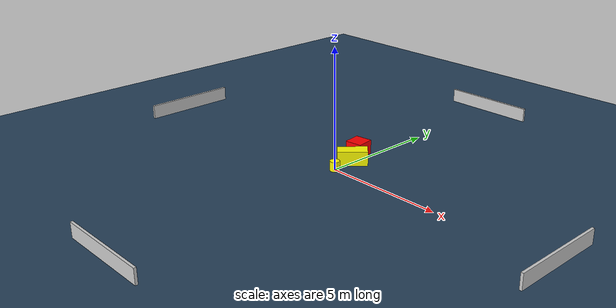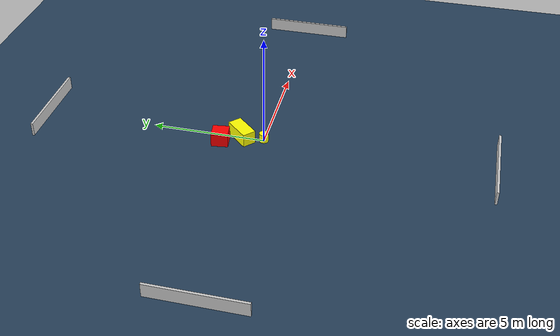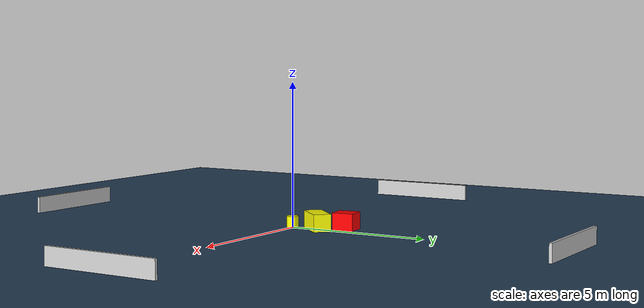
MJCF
<?xml version="1.0" ?>
<mujoco model="generated_environment">
  <option timestep="0.01" integrator="RK4" cone="elliptic"/>
  <default>
    <geom density="1"/>
  </default>
  <asset>
    <texture builtin="gradient" height="3072" name="skybox" rgb1="0.3 0.5 0.7" rgb2="0 0 0" type="skybox" width="512"/>
    <texture builtin="checker" height="300" name="groundplane" rgb1="0.2 0.3 0.4" rgb2="0.1 0.2 0.3" type="2d" width="300"/>
    <material name="groundplane" reflectance="0.2" texrepeat="5 5" texture="groundplane"/>
  </asset>
  <worldbody>
    <light dir="0 0 -1" directional="true" pos="0 0 1.5"/>
    <geom condim="3" friction="0.5 0.005 0.001" material="groundplane" name="floor" pos="0 0 0" size="0 0 0.05" type="plane"/>
    <body name="walls">
      <geom name="wall_1" condim="4" pos="-10.0 0.0 0.3" rgba="0.800000011920929 0.800000011920929 0.800000011920929 1.0" size="0.05 2.0 0.3" type="box"/>
      <geom name="wall_2" condim="4" pos="10.0 0.0 0.3" rgba="0.800000011920929 0.800000011920929 0.800000011920929 1.0" size="0.05 2.0 0.3" type="box"/>
      <geom name="wall_3" condim="4" pos="0.0 -10.0 0.3" rgba="0.800000011920929 0.800000011920929 0.800000011920929 1.0" size="2.0 0.05 0.3" type="box"/>
      <geom name="wall_4" condim="4" pos="0.0 10.0 0.3" rgba="0.800000011920929 0.800000011920929 0.800000011920929 1.0" size="2.0 0.05 0.3" type="box"/>
    </body>
    <body name="robot">
      <joint name="joint_x" type="slide" pos="0 0 0" axis="1 0 0"/>
      <joint name="joint_y" type="slide" pos="0 0 0" axis="0 1 0"/>
      <geom name="robot" type="cylinder" pos="0.0 0.0 0.2" size="0.2 0.2 0.0" mass="5.0" friction="1.0 0.005 0.0001" condim="4" rgba="1.0 1.0 0.0 1.0"/>
    </body>
    <body name="obstacle_1_movable">
      <geom name="obstacle_1_movable" condim="4" pos="-0.013572778986714879 0.9851690470124508 0.3" euler="0 0 46.84119098619605" friction="0.0 0.005 0.001" rgba="1.0 1.0 0.0 1.0" size="0.6100397746908637 0.30537933398989986 0.3" type="box" mass="0.1"/>
      <joint type="free"/>
    </body>
    <body name="obstacle_2_static">
      <geom name="obstacle_2_static" condim="4" pos="-0.5114201002934555 1.8261638100815878 0.3" euler="0 0 277.73882909348936" friction="0.0 0.005 0.001" rgba="1.0 0.0 0.0 1.0" size="0.36865139605760844 0.36499107174274215 0.3" type="box"/>
    </body>
  </worldbody>
  <actuator>
    <motor name="actuator_x" joint="joint_x" gear="1" ctrlrange="-1 1"/>
    <motor name="actuator_y" joint="joint_y" gear="1" ctrlrange="-1 1"/>
  </actuator>
</mujoco>
